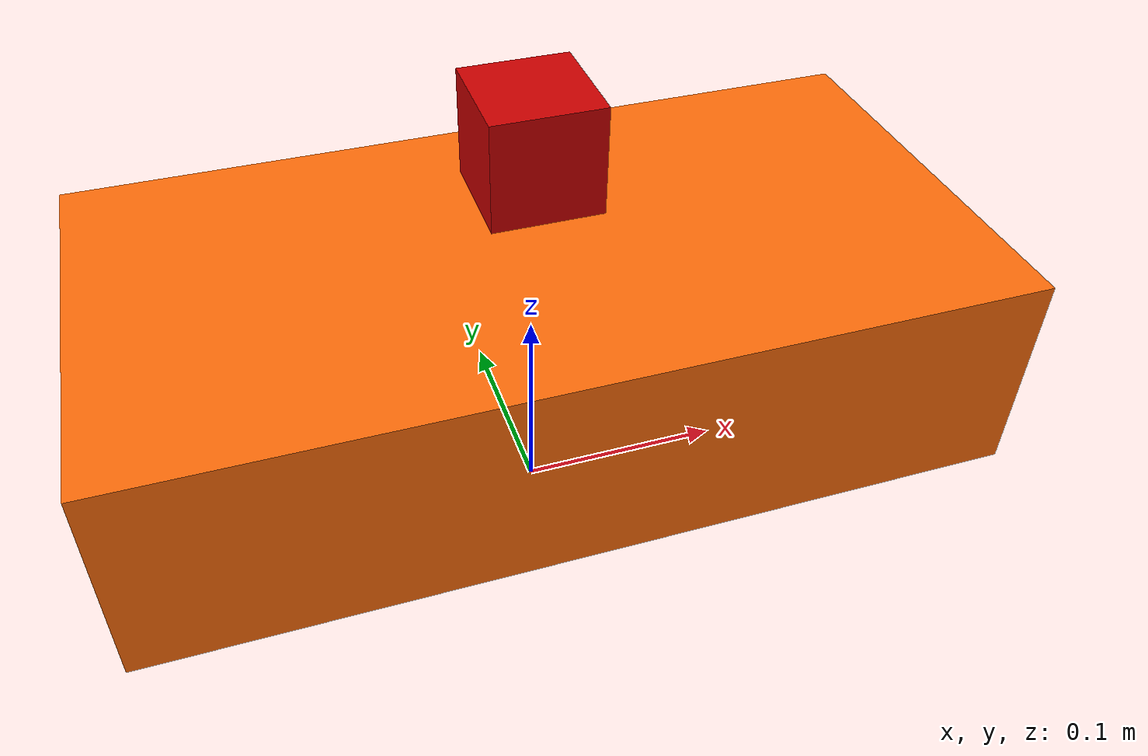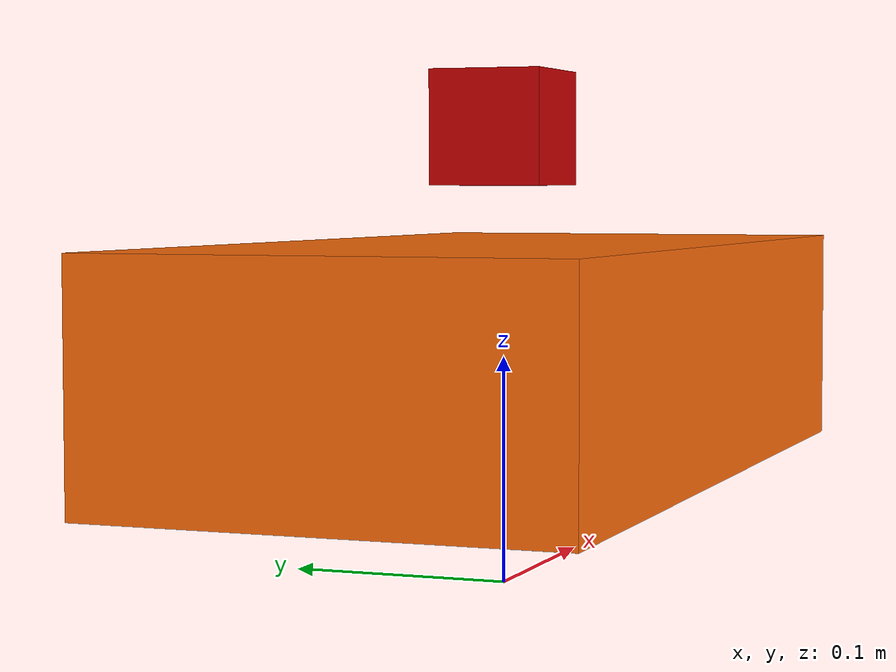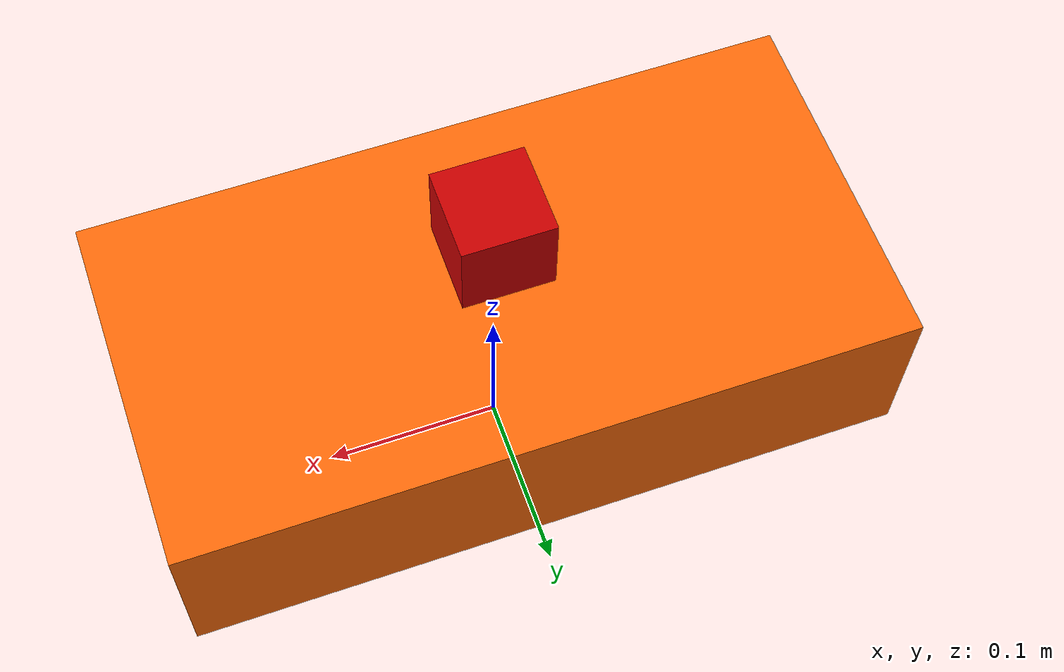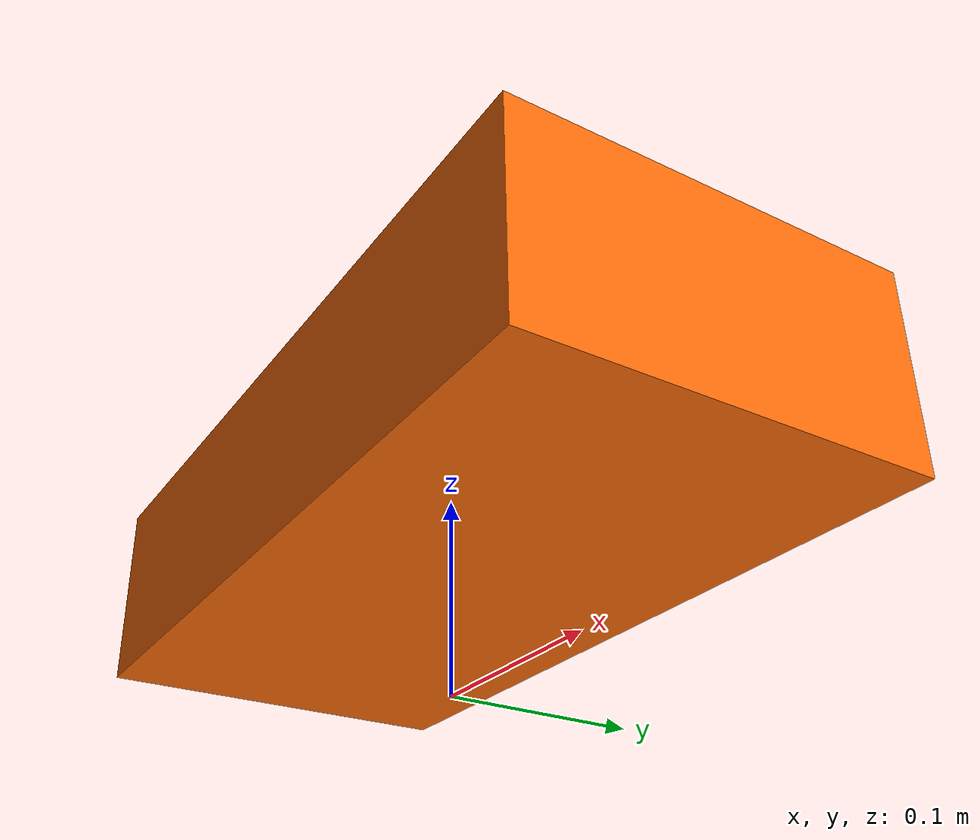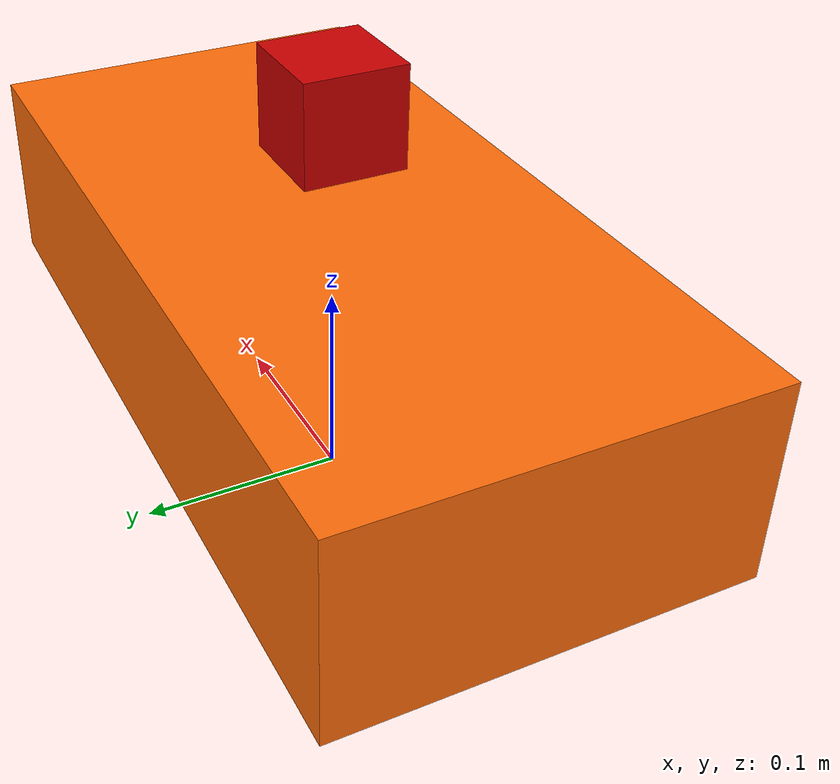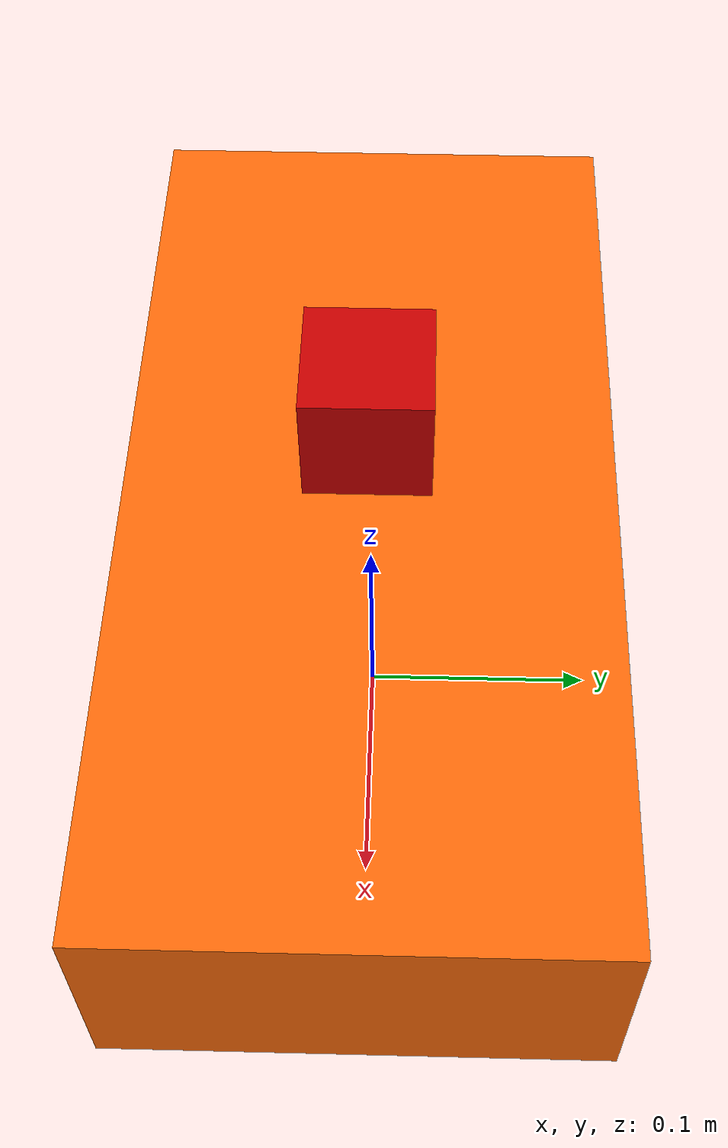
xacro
<robot name="cubo" xmlns:xacro="http://www.ros.org/wiki/xacro">

	<xacro:property name="PI" value="3.1415926535897931"/>

	<xacro:property name="chassisHeight" value="0.1"/>
	<xacro:property name="chassisLength" value="0.4"/>
	<xacro:property name="chassisWidth" value="0.2"/>
	<xacro:property name="chassisMass" value="50"/>

	<xacro:property name="casterRadius" value="0.05"/>
	<xacro:property name="casterMass" value="5"/>

	<xacro:property name="wheelWidth" value="0.05"/>
	<xacro:property name="wheelRadius" value="0.1"/>
	<xacro:property name="wheelPos" value="0.2"/>
	<xacro:property name="wheelMass" value="5"/>

	<xacro:property name="cameraSize" value="0.05"/>
	<xacro:property name="cameraMass" value="0.1"/>

	<xacro:include filename="$(find mybot_description)/urdf_2/mybot.gazebo" />
	 <xacro:include filename="$(find mybot_description)/urdf_2/materials.xacro" />
	 <xacro:include filename="$(find mybot_description)/urdf_2/macros.xacro" />

	<link name="footprint" />

	<joint name="base_joint" type="fixed">
	  <parent link="footprint"/>
	  <child link="chassis"/>
	</joint>

	<link name='chassis'>
	  <collision>
	    <origin xyz="0 0 ${wheelRadius}" rpy="0 0 0"/>
	    <geometry>
	      <box size="${chassisLength} ${chassisWidth} ${chassisHeight}"/>
	    </geometry>
	  </collision>
	  <visual>
	    <origin xyz="0 0 ${wheelRadius}" rpy="0 0 0"/>
	    <geometry>
	      <box size="${chassisLength} ${chassisWidth} ${chassisHeight}"/>
	    </geometry>
	    <material name="orange"/>
	  </visual>
	 <inertial>
	    <origin xyz="0 0 ${wheelRadius}" rpy="0 0 0"/>
	    <mass value="${chassisMass}"/>
	    <box_inertia m="${chassisMass}" x="${chassisLength}" y="${chassisWidth}" z="${chassisHeight}"/>
	  </inertial>
	</link>

  	<link name="camera">
	  <collision>
	    <origin xyz="0 0 0" rpy="0 0 0"/>
	    <geometry>
	      <box size="${cameraSize} ${cameraSize} ${cameraSize}"/>
	    </geometry>
	  </collision>

	  <visual>
	    <origin xyz="0 0 0" rpy="0 0 0"/>
	    <geometry>
	      <box size="${cameraSize} ${cameraSize} ${cameraSize}"/>
	    </geometry>
	    <material name="red"/>
	  </visual>

	  <inertial>
	  	<origin xyz="0 0 0" rpy="0 0 0"/>
	    <mass value="${cameraMass}" />
	    <box_inertia m="${cameraMass}" x="${cameraSize}" y="${cameraSize}" z="${cameraSize}" />
	  </inertial>
	</link>
        <joint name="base_camera" type="fixed">
	  <origin xyz="0 0 ${chassisHeight*2}" rpy="0 0 0"/>
	  <parent link="chassis"/>
	  <child link="camera"/>
	</joint>

</robot>

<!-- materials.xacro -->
<robot name="cubo" xmlns:xacro="http://www.ros.org/wiki/xacro">
  <material name="black">
    <color rgba="0.0 0.0 0.0 1.0"/>
  </material>

  <material name="blue">
    <color rgba="0.0 0.0 0.8 1.0"/>
  </material>

  <material name="green">
    <color rgba="0.0 0.8 0.0 1.0"/>
  </material>

  <material name="grey">
    <color rgba="0.2 0.2 0.2 1.0"/>
  </material>

  <material name="orange">
    <color rgba="${255/255} ${108/255} ${10/255} 1.0"/>
  </material>

  <material name="brown">
    <color rgba="${222/255} ${207/255} ${195/255} 1.0"/>
  </material>

  <material name="red">
    <color rgba="0.8 0.0 0.0 1.0"/>
  </material>

  <material name="white">
    <color rgba="1.0 1.0 1.0 1.0"/>
  </material>

</robot>

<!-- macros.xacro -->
<robot name="cubo" xmlns:xacro="http://www.ros.org/wiki/xacro">
  <macro name="cylinder_inertia" params="m r h">
    <inertia  ixx="${m*(3*r*r+h*h)/12}" ixy = "0" ixz = "0"
      iyy="${m*(3*r*r+h*h)/12}" iyz = "0"
      izz="${m*r*r/2}"
    />
  </macro>

  <macro name="box_inertia" params="m x y z">
    <inertia  ixx="${m*(y*y+z*z)/12}" ixy = "0" ixz = "0"
      iyy="${m*(x*x+z*z)/12}" iyz = "0"
      izz="${m*(x*x+z*z)/12}"
    />
  </macro>

  <macro name="sphere_inertia" params="m r">
    <inertia  ixx="${2*m*r*r/5}" ixy = "0" ixz = "0"
      iyy="${2*m*r*r/5}" iyz = "0"
      izz="${2*m*r*r/5}"
    />
  </macro>

<macro name="wheel" params="lr tY">

  <link name="${lr}_wheel">
    <collision>
      <origin xyz="0 0 0" rpy="0 ${PI/2} ${PI/2}" />
      <geometry>
        <cylinder length="${wheelWidth}" radius="${wheelRadius}"/>
      </geometry>
    </collision>

    <visual>
      <origin xyz="0 0 0" rpy="0 ${PI/2} ${PI/2}" />
      <geometry>
        <cylinder length="${wheelWidth}" radius="${wheelRadius}"/>
      </geometry>
      <material name="black"/>
    </visual>

    <inertial>
      <origin xyz="0 0 0" rpy="0 ${PI/2} ${PI/2}" />
      <mass value="${wheelMass}"/>
      <cylinder_inertia m="${wheelMass}" r="${wheelRadius}" h="${wheelWidth}"/>
    </inertial>
  </link>

  <gazebo reference="${lr}_wheel">
    <mu1 value="1.0"/>
    <mu2 value="1.0"/>
    <kp  value="10000000.0" />
    <kd  value="1.0" />
    <fdir1 value="1 0 0"/>
    <material>Gazebo/Black</material>
  </gazebo>

  <joint name="${lr}_wheel_hinge" type="continuous">
    <parent link="chassis"/>
    <child link="${lr}_wheel"/>
  <origin xyz="${-wheelPos+chassisLength/2} ${tY*wheelWidth/2+tY*chassisWidth/2} ${wheelRadius}" rpy="0 0 0" />
    <axis xyz="0 1 0" rpy="0 0 0" />
    <limit effort="100" velocity="100"/>
    <joint_properties damping="0.0" friction="0.0"/>
  </joint>

  <transmission name="${lr}_trans">
    <type>transmission_interface/SimpleTransmission</type>
    <joint name="${lr}_wheel_hinge">
      <hardwareInterface>EffortJointInterface</hardwareInterface>
    </joint>
    <actuator name="${lr}Motor">
      <mechanicalReduction>10</mechanicalReduction>
      <hardwareInterface>EffortJointInterface</hardwareInterface>
    </actuator>
  </transmission>

  </macro>

</robot>
